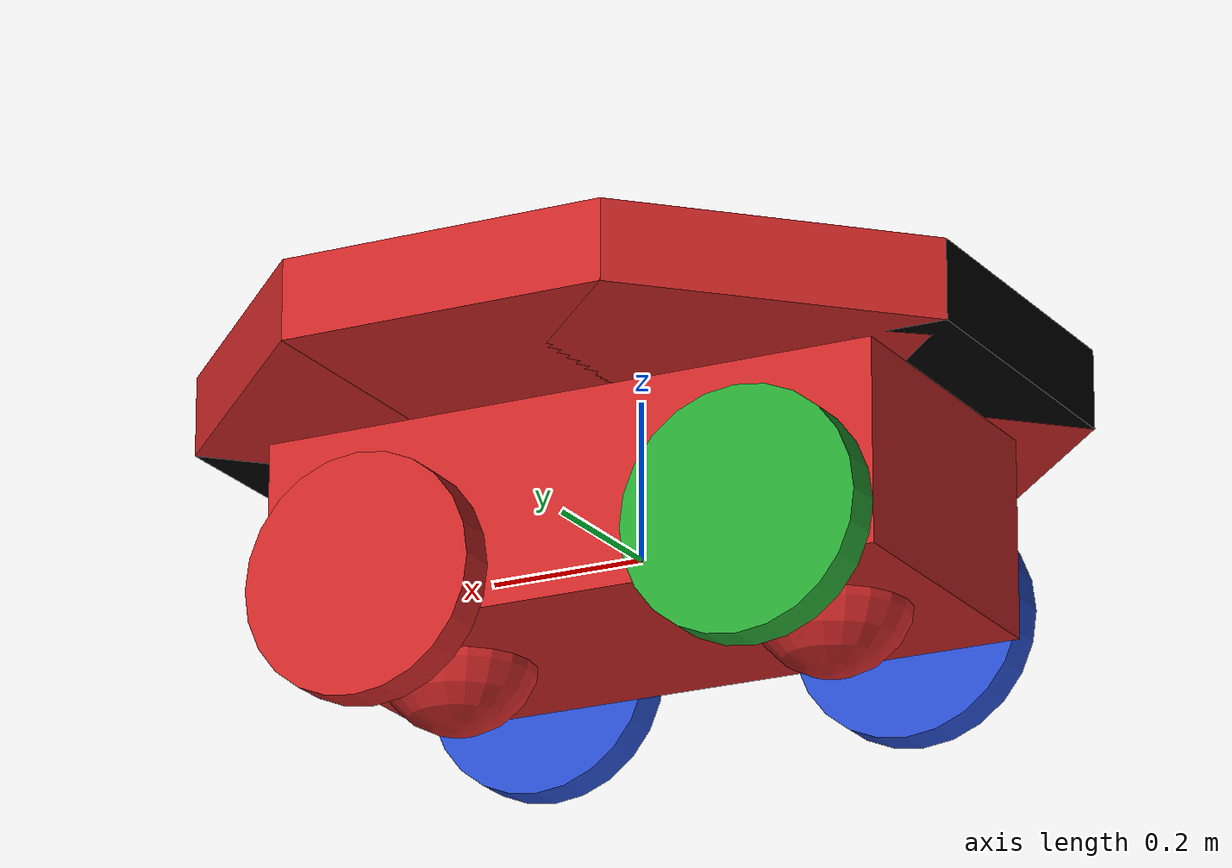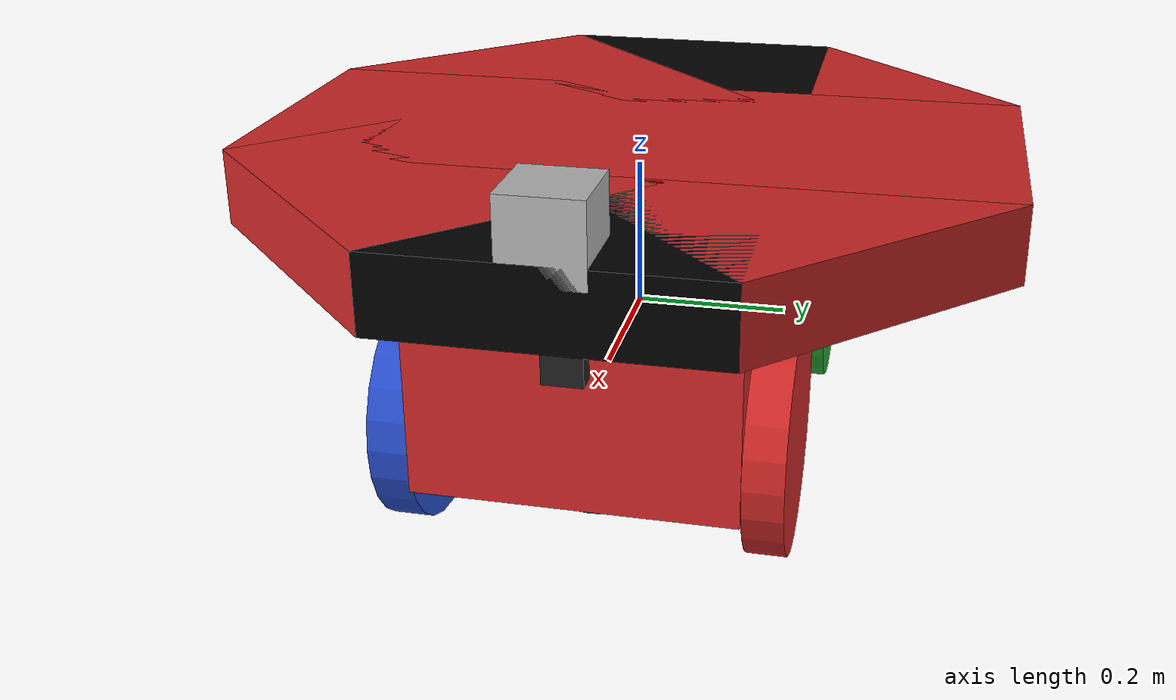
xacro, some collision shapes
<?xml version='1.0'?>

<robot name="my_robot" xmlns:xacro="http://www.ros.org/wiki/xacro">

  <xacro:include filename="$(find my_robot)/urdf/my_robot.gazebo" />

  <link name="robot_footprint"></link>

    <joint name="robot_footprint_joint" type="fixed">
      <origin xyz="0 0 0" rpy="0 0 0" />
      <parent link="robot_footprint"/>
      <child link="chassis" />
    </joint>

<!-- chassis frame of reference is .1 off the ground, hence casters lowered .05 w/ radius .05-->
  <link name='chassis'>
    <pose>0 0 0.15 0 0 0</pose>

    <inertial>
      <mass value="15.0"/>
      <origin xyz="0.0 0 0" rpy=" 0 0 0"/>
      <inertia
          ixx="0.1" ixy="0" ixz="0"
          iyy="0.1" iyz="0"
          izz="0.1"
      />
    </inertial>

    <!-- is there a way to group these 4 rectangles?? -->
    <!-- creating an octagon using 4 rectangles -->
    <!-- lifting these rectangles up and adding a box under to connect to wheels (wheel height is .2) -->
      <!-- rectangle 1 -->
      <collision name='collision_box1'>
        <origin xyz="0 0 0.2" rpy=" 0 0 0"/>
        <geometry>
          <box size="1 0.4142 0.1"/>
        </geometry>
      </collision>

      <visual name='chassis_visual_box1'>
        <origin xyz="0 0 0.2" rpy=" 0 0 0"/>
        <geometry>
          <box size="1 0.4142 0.1"/>
        </geometry>
        <material name="black">
          <color rgba="0 0 0 1"/>
        </material>
      </visual>

      <!-- rectangle 2 -->
      <collision name='collision_box2'>
        <origin xyz="0 0 0.2" rpy=" 0 0 0"/>
        <geometry>
          <box size="0.4142 1 0.1"/>
        </geometry>
      </collision>

      <visual name='chassis_visual_box2'>
        <origin xyz="0 0 0.2" rpy=" 0 0 0"/>
        <geometry>
          <box size="0.4142 1 0.1"/>
        </geometry>
      </visual>

      <!-- rectangle 3 -->
      <collision name='collision_box3'>
        <origin xyz="0 0 0.2" rpy="0 0 0.7854"/>
        <geometry>
          <box size="0.4142 1 0.1"/>
        </geometry>
      </collision>

      <visual name='chassis_visual_box3'>
        <origin xyz="0 0 0.2" rpy="0 0 0.7854"/>
        <geometry>
          <box size="0.4142 1 0.1"/>
        </geometry>
      </visual>

      <!-- rectangle 4 -->
      <collision name='collision_box4'>
        <origin xyz="0 0 0.2" rpy="0 0 -0.7854"/>
        <geometry>
          <box size="0.4142 1 0.1"/>
        </geometry>
      </collision>

      <visual name='chassis_visual_box4'>
        <origin xyz="0 0 0.2" rpy="0 0 -0.7854"/>
        <geometry>
          <box size="0.4142 1 0.1"/>
        </geometry>
      </visual>

	      <!-- wheel box -->
	      <collision name='collision_wheelbox'>
		<origin xyz="0 0 0.05" rpy="0 0 0"/>
		<geometry>
		  <box size="0.8 0.4 0.3"/>
		</geometry>
	      </collision>

	      <visual name='chassis_visual_wheelbox'>
		<origin xyz="0 0 0.05" rpy="0 0 0"/>
		<geometry>
		  <box size="0.8 0.4 0.3"/>
		</geometry>
	      </visual>

	<!-- casters to stop it falling over -->
	<!-- can't figure out putting weight on the wheels w/out robo tipover-->
	<collision name='back_caster_collision'>
	  <origin xyz="-0.25 0 -0.08" rpy="0 0 0"/>
	  <geometry>
	    <sphere radius="0.0999"/>
	  </geometry>
	</collision>

	<visual name='back_caster_visual'>
	  <origin xyz="-0.25 0 -0.08" rpy=" 0 0 0"/>
	  <geometry>
	    <sphere radius="0.1"/>
	  </geometry>
	</visual>

	<collision name='front_caster_collision'>
	  <origin xyz="0.25 0 -0.08" rpy=" 0 0 0"/>
	  <geometry>
	    <sphere radius="0.0999"/>
	  </geometry>
	</collision>

	<visual name='front_caster_visual'>
	  <origin xyz="0.25 0 -0.08" rpy=" 0 0 0"/>
	  <geometry>
	    <sphere radius="0.1"/>
	  </geometry>
	</visual>

  </link>
  <gazebo reference="chassis">
    <material>Gazebo/Red</material>
  </gazebo>

  <!-- adding wheels -->
  <link name='front_right_wheel'>

    <!-- front right wheel -->
    <inertial name='front_right_wheel_inertia'>
      <mass value="5.0"/>
      <origin xyz="0.25 0.025 0" rpy=" 0 1.57 1.57"/>
      <inertia
          ixx="0.1" ixy="0" ixz="0"
          iyy="0.1" iyz="0"
          izz="0.1"
      />
    </inertial>

    <collision name='front_right_wheel_collision'>
      <origin xyz="0.25 0.025 0" rpy=" 0 1.57 1.57"/>
      <geometry>
        <cylinder length=".05" radius="0.15"/>
      </geometry>
    </collision>

    <visual name='front_right_wheel_visual'>
      <origin xyz="0.25 0.025 0" rpy=" 0 1.57 1.57"/>
      <geometry>
        <cylinder length="0.05" radius="0.15"/>
      </geometry>
      <material name="Blue"/>
    </visual>
  </link>
  <gazebo reference="front_right_wheel">
    <material>Gazebo/Blue</material>
  </gazebo>

  <link name='back_right_wheel'>
    <inertial name='back_right_wheel_inertia'>
      <mass value="5.0"/>
      <origin xyz="-0.25 0.025 0" rpy=" 0 1.57 1.57"/>
      <inertia
          ixx="0.1" ixy="0" ixz="0"
          iyy="0.1" iyz="0"
          izz="0.1"
      />
    </inertial>

    <collision name='back_right_wheel_collision'>
      <origin xyz="-0.25 0.025 0" rpy=" 0 1.57 1.57"/>
      <geometry>
        <cylinder length="0.05" radius="0.15"/>
      </geometry>
    </collision>

    <visual name='back_right_wheel_visual'>
      <origin xyz="-0.25 0.025 0" rpy=" 0 1.57 1.57"/>
      <geometry>
        <cylinder length="0.05" radius="0.15"/>
      </geometry>
    </visual>
  </link>
  <gazebo reference="back_right_wheel">
    <material>Gazebo/Blue</material>
  </gazebo>

  <link name='left_wheel'>

    <inertial name='front_left_wheel_inertia'>
      <mass value="5.0"/>
      <origin xyz="0.25 -0.025 0" rpy=" 0 1.57 1.57"/>
      <inertia
          ixx="0.1" ixy="0" ixz="0"
          iyy="0.1" iyz="0"
          izz="0.1"
      />
    </inertial>

    <collision name='front_left_wheel_collision'>
      <origin xyz="0.25 -0.025 0" rpy=" 0 1.57 1.57"/>
      <geometry>
        <cylinder length="0.05" radius="0.15"/>
      </geometry>
    </collision>

    <visual name='left_wheel_visual'>
      <origin xyz="0.25 -0.025 0" rpy=" 0 1.57 1.57"/>
      <geometry>
        <cylinder length="0.05" radius="0.15"/>
      </geometry>

    </visual>
  </link>
  <gazebo reference="left_wheel"> <material>Gazebo/Red</material> </gazebo>

  <link name='back_left_wheel'>

    <inertial name='back_left_wheel_inertia'>
      <mass value="5.0"/>
      <origin xyz="-0.25 -0.025 0" rpy=" 0 1.57 1.57"/>
      <inertia
          ixx="0.1" ixy="0" ixz="0"
          iyy="0.1" iyz="0"
          izz="0.1"
      />
    </inertial>

    <collision name='back_left_wheel_collision'>
      <origin xyz="-0.25 -0.025 0" rpy=" 0 1.57 1.57"/>
      <geometry>
        <cylinder length="0.05" radius="0.15"/>
      </geometry>
    </collision>

    <visual name='back_left_wheel_visual'>
      <origin xyz="-0.25 -0.025 0" rpy=" 0 1.57 1.57"/>
      <geometry>
        <cylinder length="0.05" radius="0.15"/>
      </geometry>
    </visual>
  </link>
  <gazebo reference="back_left_wheel"> <material>Gazebo/Green</material> </gazebo>

<!-- Sensors -->
  <link name='camera'>

    <inertial name='camera_inertia'>
      <mass value=".1"/>
      <origin xyz="0 0 0" rpy=" 0 0 0"/>
      <inertia
          ixx="1e-6" ixy="0" ixz="0"
          iyy="1e-6" iyz="0"
          izz="1e-6"
      />
    </inertial>

    <visual name='camera_visual'>
      <origin xyz="0 0 0" rpy="0 0 0 "/>
      <geometry>
        <box size="0.05 0.05 0.05"/>
      </geometry>
    </visual>

    <collision name='camera_collision'>
      <origin xyz="0 0 0" rpy="0 0 0 "/>
      <geometry>
        <box size="0.05 0.05 0.05"/>
      </geometry>
    </collision>
  </link>
  <gazebo reference="camera">
    <material>Gazebo/Black</material>
  </gazebo>

  <link name="hokuyo">
    <inertial name="hokuyo_inertial">
      <mass value="1e-5"/>
      <origin xyz="0 0 0" rpy="0 0 0"/>
      <inertia
          ixx="1e-6" ixy="0" ixz="0"
          iyy="1e-6" iyz="0"
          izz="1e-6"
      />
    </inertial>

    <visual name="hokuyo_visual">
      <origin xyz="0 0 0" rpy="0 0 0"/>
      <geometry>
        <mesh filename="package://my_robot/meshes/hokuyo.dae"/>
      </geometry>
    </visual>

    <collision name="hokuyo_collision">
      <origin xyz="0 0 0" rpy="0 0 0"/>
      <geometry>
        <box size="0.1 0.1 0.1"/>
      </geometry>
    </collision>
  </link>

  <!-- joints -->
  <!-- TODO: determine if this will spin each wheel individually or the entire dual wheel assembly :( -->
  <joint type="continuous" name="left_wheel_hinge">
    <origin xyz="0 0.25 -0.05" rpy="0 0 0"/>
    <parent link="chassis"/>
    <child link="left_wheel"/>
    <axis xyz="0 1 0" rpy="0 0 0"/>
    <limit effort="10000" velocity="1000"/>
    <dynamics damping="1.0" friction="1.0"/>
  </joint>
  <joint type="continuous" name="back_left_wheel_hinge">
    <origin xyz="0 0.25 -0.05" rpy="0 0 0"/>
    <parent link="chassis"/>
    <child link="back_left_wheel"/>
    <axis xyz="0 1 0" rpy="0 0 0"/>
    <limit effort="10000" velocity="1000"/>
    <dynamics damping="1.0" friction="1.0"/>
  </joint>

  <joint type="continuous" name="right_wheel_hinge">
    <origin xyz="0 -0.25 -0.05" rpy="0 0 0"/>
    <parent link="chassis"/>
    <child link="front_right_wheel"/>
    <axis xyz="0 1 0" rpy="0 0 0"/>
    <limit effort="10000" velocity="1000"/>
    <dynamics damping="1.0" friction="1.0"/>
  </joint>
  <joint type="continuous" name="back_right_wheel_hinge">
    <origin xyz="0 -0.25 -0.05" rpy="0 0 0"/>
    <parent link="chassis"/>
    <child link="back_right_wheel"/>
    <axis xyz="0 1 0" rpy="0 0 0"/>
    <limit effort="10000" velocity="1000"/>
    <dynamics damping="1.0" friction="1.0"/>
  </joint>

  <joint type="fixed" name="camera_joint">
    <origin xyz="0.4 0 0.1" rpy="0 0 0"/>
    <axis xyz="0 1 0" rpy="0 0 0"/>
    <parent link="chassis"/>
    <child link="camera"/>
  </joint>

  <joint type="fixed" name="hokuyo_joint">
    <origin xyz="0.45 0 0.275" rpy="0 0 0"/>
    <axis xyz="0 1 0"/>
    <parent link="chassis"/>
    <child link="hokuyo"/>
  </joint>

</robot>
